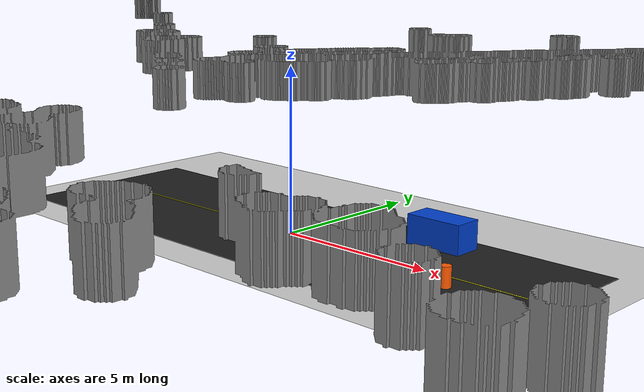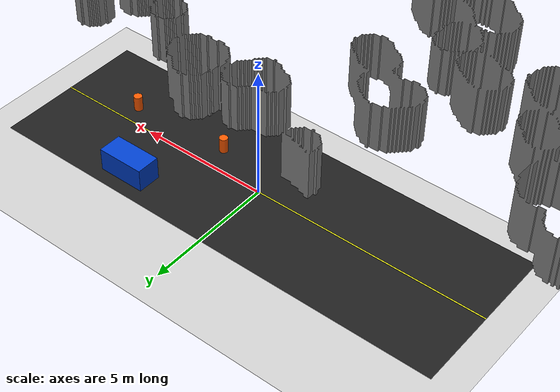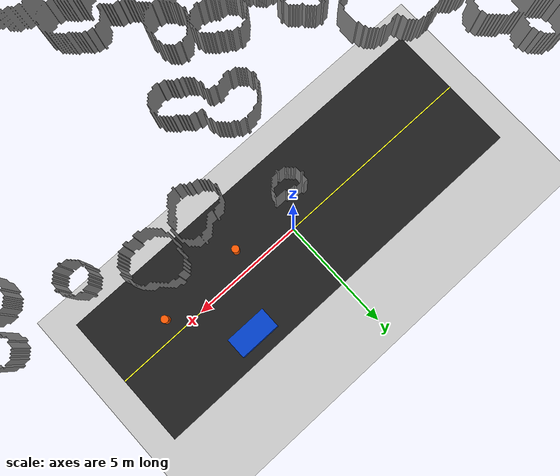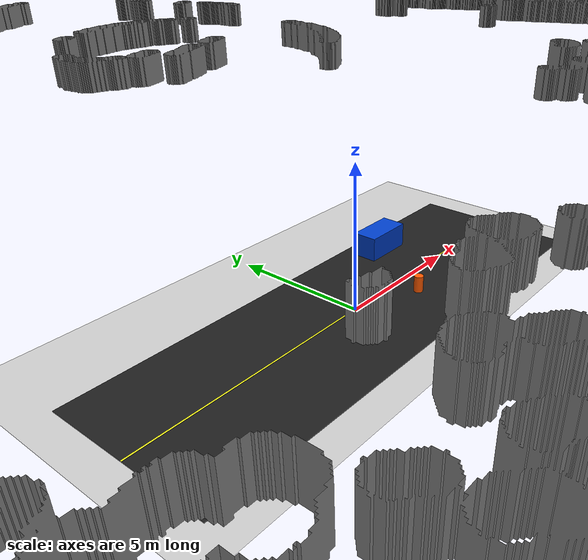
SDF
<?xml version="1.0"?>
<sdf version="1.6">
  <world name="road_free_space">
    <include><uri>model://sun</uri></include>
    <include><uri>model://ground_plane</uri></include>
    <!-- PGM-derived scan-visible surface proves simulation map/route consistency only; it is not survey, hardware, or passenger evidence. -->
    <include><uri>model://hanyang_aegimun_occupancy_walls</uri></include>

    <model name="road_surface">
      <static>true</static>
      <pose>0 0 0.012 0 0 0</pose>
      <link name="link">
        <collision name="collision"><geometry><box><size>18 6 0.02</size></box></geometry></collision>
        <visual name="visual"><geometry><box><size>18 6 0.02</size></box></geometry><material><ambient>0.12 0.12 0.12 1</ambient></material></visual>
      </link>
    </model>

    <model name="lane_marking_center">
      <static>true</static>
      <pose>0 0 0.03 0 0 0</pose>
      <link name="link">
        <visual name="visual"><geometry><box><size>18 0.05 0.01</size></box></geometry><material><ambient>1 1 0.1 1</ambient></material></visual>
      </link>
    </model>

    <model name="parked_car_left">
      <static>true</static>
      <pose>4.0 2.05 0.45 0 0 0</pose>
      <link name="body">
        <collision name="collision"><geometry><box><size>1.8 0.9 0.9</size></box></geometry></collision>
        <visual name="visual"><geometry><box><size>1.8 0.9 0.9</size></box></geometry><material><ambient>0.0 0.25 0.8 1</ambient></material></visual>
      </link>
    </model>

    <model name="traffic_cone_1">
      <static>true</static>
      <pose>2.3 -0.9 0.30 0 0 0</pose>
      <link name="cone">
        <collision name="collision"><geometry><cylinder><radius>0.16</radius><length>0.60</length></cylinder></geometry></collision>
        <visual name="visual"><geometry><cylinder><radius>0.16</radius><length>0.60</length></cylinder></geometry><material><ambient>1.0 0.35 0.0 1</ambient></material></visual>
      </link>
    </model>

    <model name="traffic_cone_2">
      <static>true</static>
      <pose>6.2 -0.7 0.30 0 0 0</pose>
      <link name="cone">
        <collision name="collision"><geometry><cylinder><radius>0.16</radius><length>0.60</length></cylinder></geometry></collision>
        <visual name="visual"><geometry><cylinder><radius>0.16</radius><length>0.60</length></cylinder></geometry><material><ambient>1.0 0.35 0.0 1</ambient></material></visual>
      </link>
    </model>

    <physics name="ode" type="ode">
      <max_step_size>0.001</max_step_size>
      <real_time_update_rate>1000</real_time_update_rate>
    </physics>
  </world>
</sdf>

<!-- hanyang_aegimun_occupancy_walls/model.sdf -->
<!-- Generated by scripts/generate_hanyang_gazebo_model.py; do not edit. -->
<!-- map_yaml_sha256=9f36ab2d3d35a667996570b45babb7cb3ba8bd1e706a971af22603da1220e7ff -->
<!-- map_pgm_sha256=c89d791f71fe3d1705ae04724acf8ff6ba0ccc351fc162fe996982f9469a0278 -->
<!-- dimensions=3220x2361 resolution=0.1 origin=[-60.1,-148.4,0] -->
<!-- occupied_value=0 free_value=254 unknown_value=205 source_occupied_points=16629 final_occupied_cells=210223 boundary_segments=32712 boundary_faces=65424 wall_height=2 -->
<sdf version="1.6">
  <model name="hanyang_aegimun_occupancy_walls">
    <static>true</static>
    <pose>0 0 0 0 0 0</pose>
    <link name="occupancy_walls">
      <pose>0 0 0 0 0 0</pose>
      <collision name="occupancy_walls_collision">
        <geometry><mesh><uri>model://hanyang_aegimun_occupancy_walls/meshes/occupancy_walls.obj</uri></mesh></geometry>
      </collision>
      <visual name="occupancy_walls_visual">
        <geometry><mesh><uri>model://hanyang_aegimun_occupancy_walls/meshes/occupancy_walls.obj</uri></mesh></geometry>
        <material><ambient>0.45 0.45 0.45 1</ambient><diffuse>0.55 0.55 0.55 1</diffuse></material>
      </visual>
    </link>
  </model>
</sdf>
